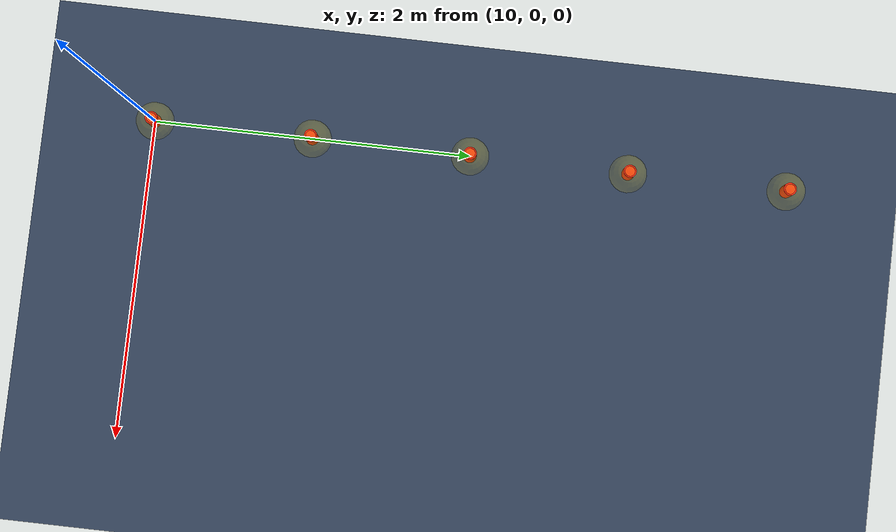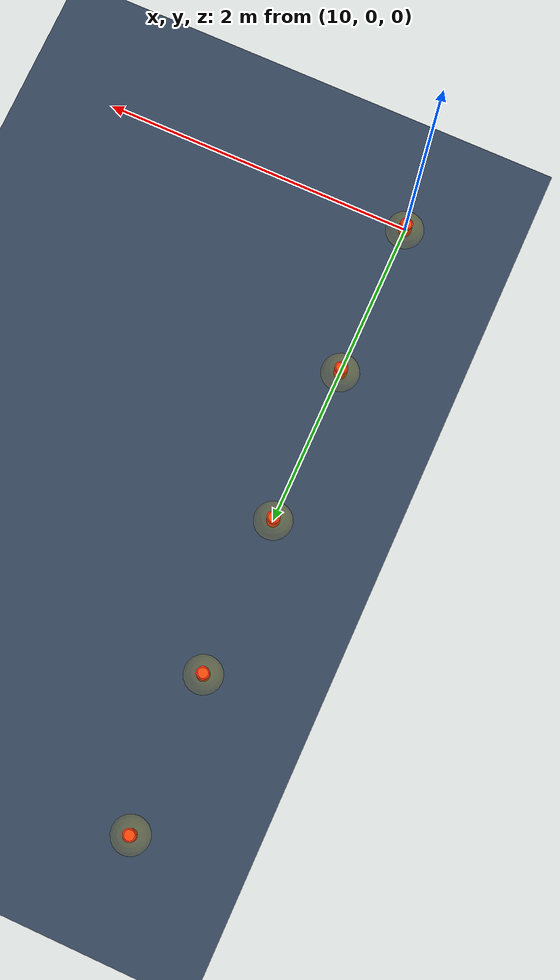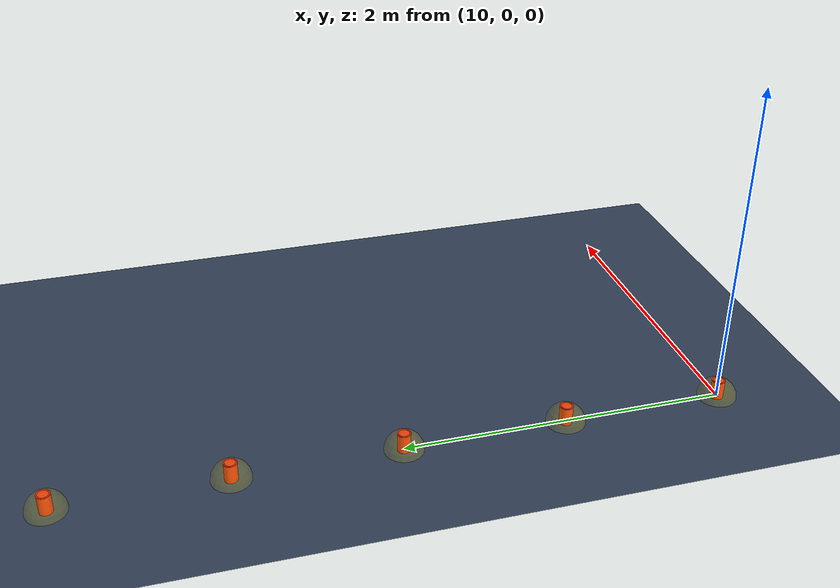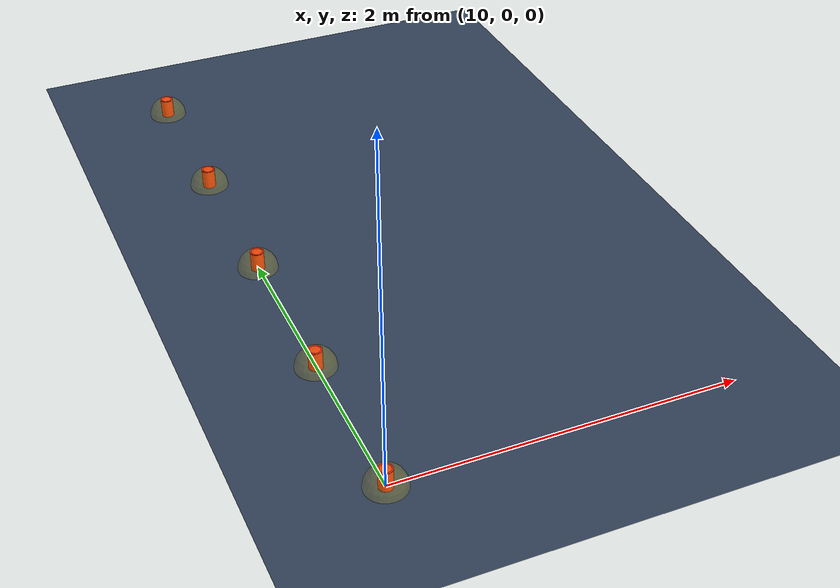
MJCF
<mujoco model="cam test — bottle viewer">

  <statistic center="0.4 0 0.3" extent="1.2"/>

  <visual>
    <headlight diffuse="0.6 0.6 0.6" ambient="0.2 0.2 0.2" specular="0 0 0"/>
    <rgba haze="0.1 0.15 0.25 1"/>
    <global azimuth="120" elevation="-20"/>
  </visual>

  <asset>
    <texture type="skybox" builtin="gradient" rgb1="0.25 0.4 0.6" rgb2="0 0 0"
             width="512" height="3072"/>
    <texture type="2d" name="groundplane" builtin="checker" mark="edge"
             rgb1="0.25 0.32 0.42" rgb2="0.15 0.20 0.28" markrgb="0.7 0.7 0.7"
             width="300" height="300"/>
    <material name="groundplane" texture="groundplane" texuniform="true"
              texrepeat="5 5" reflectance="0.15"/>
    <material name="bottle_mat"  rgba="0.95 0.15 0.05 0.9"/>
    <material name="safety_mat"  rgba="1.0  0.85 0.0  0.15"/>
  </asset>

  <worldbody>
    <light pos="0.5 0.0 2.0" dir="0 0 -1" directional="true"/>
    <light pos="-0.5 0.5 1.0" dir="0.3 -0.3 -0.8" directional="true"
           diffuse="0.3 0.3 0.3"/>
    <geom name="floor" size="0 0 0.05" type="plane" material="groundplane"/>

    <!-- Bottle markers — parked far away until detected -->
    <body name="bottle_0" mocap="true" pos="10 0 0">
      <geom type="cylinder" size="0.04 0.115" material="bottle_mat"
            contype="0" conaffinity="0"/>
      <geom type="sphere"   size="0.12"       material="safety_mat"
            contype="0" conaffinity="0"/>
    </body>
    <body name="bottle_1" mocap="true" pos="10 1 0">
      <geom type="cylinder" size="0.04 0.115" material="bottle_mat"
            contype="0" conaffinity="0"/>
      <geom type="sphere"   size="0.12"       material="safety_mat"
            contype="0" conaffinity="0"/>
    </body>
    <body name="bottle_2" mocap="true" pos="10 2 0">
      <geom type="cylinder" size="0.04 0.115" material="bottle_mat"
            contype="0" conaffinity="0"/>
      <geom type="sphere"   size="0.12"       material="safety_mat"
            contype="0" conaffinity="0"/>
    </body>
    <body name="bottle_3" mocap="true" pos="10 3 0">
      <geom type="cylinder" size="0.04 0.115" material="bottle_mat"
            contype="0" conaffinity="0"/>
      <geom type="sphere"   size="0.12"       material="safety_mat"
            contype="0" conaffinity="0"/>
    </body>
    <body name="bottle_4" mocap="true" pos="10 4 0">
      <geom type="cylinder" size="0.04 0.115" material="bottle_mat"
            contype="0" conaffinity="0"/>
      <geom type="sphere"   size="0.12"       material="safety_mat"
            contype="0" conaffinity="0"/>
    </body>
  </worldbody>

</mujoco>
